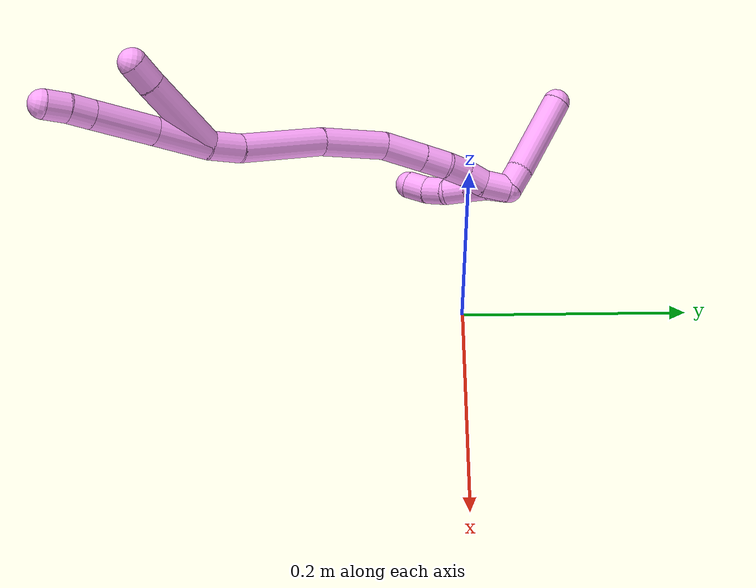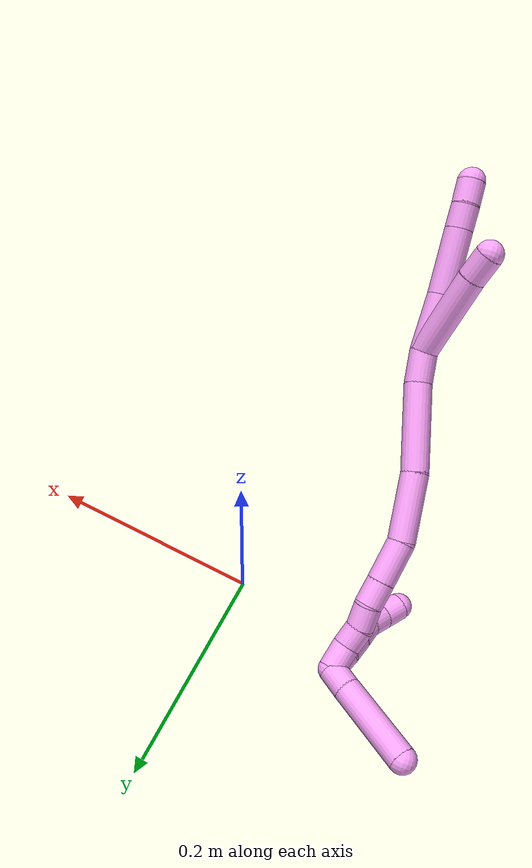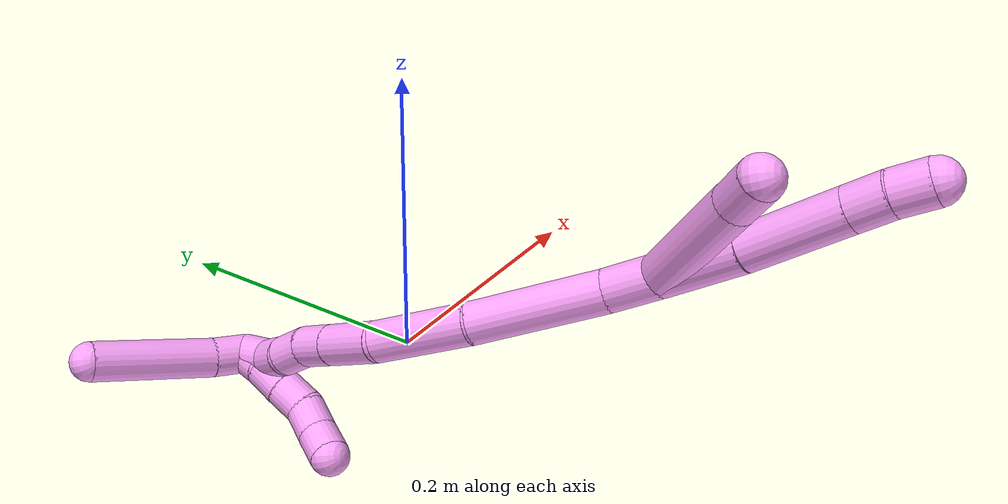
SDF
<sdf version="1.7">
 <world name="default">
  <model name="4">
   <static>0</static>
   <link name="4">
    <collision name="collision-cylinder-e_1_2_8">
     <pose>0.003024 0.001178 0.024854 -0.047366 0.120931 -0.002868</pose>
     <geometry><cylinder><radius>0.0125</radius><length>0.05013</length></cylinder></geometry>
     <surface>
      <friction><ode><mu>1.16</mu><mu2>1.16</mu2><slip1>0</slip1><slip2>0</slip2></ode></friction>
      <contact><ode><kp>1e+06</kp><kd>1</kd><max_vel>0</max_vel><min_depth>0.001</min_depth></ode></contact>
     </surface>
    </collision>
    <visual name="visual-cylinder-e_1_2_8">
     <pose>0.003024 0.001178 0.024854 -0.047366 0.120931 -0.002868</pose>
     <geometry><cylinder><radius>0.0125</radius><length>0.05013</length></cylinder></geometry>
     <material><ambient>1 0.65098 0.996078 1</ambient></material>
    </visual>
    <collision name="collision-cylinder-e_2_8_9">
     <pose>0.011317 0.003818 0.078114 -0.051401 0.183192 -0.004722</pose>
     <geometry><cylinder><radius>0.0125</radius><length>0.057855</length></cylinder></geometry>
     <surface>
      <friction><ode><mu>1.16</mu><mu2>1.16</mu2><slip1>0</slip1><slip2>0</slip2></ode></friction>
      <contact><ode><kp>1e+06</kp><kd>1</kd><max_vel>0</max_vel><min_depth>0.001</min_depth></ode></contact>
     </surface>
    </collision>
    <visual name="visual-cylinder-e_2_8_9">
     <pose>0.011317 0.003818 0.078114 -0.051401 0.183192 -0.004722</pose>
     <geometry><cylinder><radius>0.0125</radius><length>0.057855</length></cylinder></geometry>
     <material><ambient>1 0.65098 0.996078 1</ambient></material>
    </visual>
    <collision name="collision-cylinder-e_3_9_10">
     <pose>0.018418 0.005868 0.116891 -0.05674 0.174512 -0.004965</pose>
     <geometry><cylinder><radius>0.0125</radius><length>0.021098</length></cylinder></geometry>
     <surface>
      <friction><ode><mu>1.16</mu><mu2>1.16</mu2><slip1>0</slip1><slip2>0</slip2></ode></friction>
      <contact><ode><kp>1e+06</kp><kd>1</kd><max_vel>0</max_vel><min_depth>0.001</min_depth></ode></contact>
     </surface>
    </collision>
    <visual name="visual-cylinder-e_3_9_10">
     <pose>0.018418 0.005868 0.116891 -0.05674 0.174512 -0.004965</pose>
     <geometry><cylinder><radius>0.0125</radius><length>0.021098</length></cylinder></geometry>
     <material><ambient>1 0.65098 0.996078 1</ambient></material>
    </visual>
    <collision name="collision-cylinder-e_4_10_6">
     <pose>0.021612 0.005961 0.137621 0.047867 0.130569 0.00313</pose>
     <geometry><cylinder><radius>0.0125</radius><length>0.020918</length></cylinder></geometry>
     <surface>
      <friction><ode><mu>1.16</mu><mu2>1.16</mu2><slip1>0</slip1><slip2>0</slip2></ode></friction>
      <contact><ode><kp>1e+06</kp><kd>1</kd><max_vel>0</max_vel><min_depth>0.001</min_depth></ode></contact>
     </surface>
    </collision>
    <visual name="visual-cylinder-e_4_10_6">
     <pose>0.021612 0.005961 0.137621 0.047867 0.130569 0.00313</pose>
     <geometry><cylinder><radius>0.0125</radius><length>0.020918</length></cylinder></geometry>
     <material><ambient>1 0.65098 0.996078 1</ambient></material>
    </visual>
    <collision name="collision-cylinder-e_1_2_11">
     <pose>0.005726 0.020059 0.031723 -0.563852 0.151391 -0.043926</pose>
     <geometry><cylinder><radius>0.0125</radius><length>0.075935</length></cylinder></geometry>
     <surface>
      <friction><ode><mu>1.16</mu><mu2>1.16</mu2><slip1>0</slip1><slip2>0</slip2></ode></friction>
      <contact><ode><kp>1e+06</kp><kd>1</kd><max_vel>0</max_vel><min_depth>0.001</min_depth></ode></contact>
     </surface>
    </collision>
    <visual name="visual-cylinder-e_1_2_11">
     <pose>0.005726 0.020059 0.031723 -0.563852 0.151391 -0.043926</pose>
     <geometry><cylinder><radius>0.0125</radius><length>0.075935</length></cylinder></geometry>
     <material><ambient>1 0.65098 0.996078 1</ambient></material>
    </visual>
    <collision name="collision-cylinder-e_2_11_5">
     <pose>0.012695 0.046922 0.073293 -0.604615 0.103487 -0.0323</pose>
     <geometry><cylinder><radius>0.0125</radius><length>0.024065</length></cylinder></geometry>
     <surface>
      <friction><ode><mu>1.16</mu><mu2>1.16</mu2><slip1>0</slip1><slip2>0</slip2></ode></friction>
      <contact><ode><kp>1e+06</kp><kd>1</kd><max_vel>0</max_vel><min_depth>0.001</min_depth></ode></contact>
     </surface>
    </collision>
    <visual name="visual-cylinder-e_2_11_5">
     <pose>0.012695 0.046922 0.073293 -0.604615 0.103487 -0.0323</pose>
     <geometry><cylinder><radius>0.0125</radius><length>0.024065</length></cylinder></geometry>
     <material><ambient>1 0.65098 0.996078 1</ambient></material>
    </visual>
    <collision name="collision-cylinder-e_1_2_12">
     <pose>-0.002696 0.001367 -0.014608 -3.04829 -0.181722 2.19456</pose>
     <geometry><cylinder><radius>0.0125</radius><length>0.029835</length></cylinder></geometry>
     <surface>
      <friction><ode><mu>1.16</mu><mu2>1.16</mu2><slip1>0</slip1><slip2>0</slip2></ode></friction>
      <contact><ode><kp>1e+06</kp><kd>1</kd><max_vel>0</max_vel><min_depth>0.001</min_depth></ode></contact>
     </surface>
    </collision>
    <visual name="visual-cylinder-e_1_2_12">
     <pose>-0.002696 0.001367 -0.014608 -3.04829 -0.181722 2.19456</pose>
     <geometry><cylinder><radius>0.0125</radius><length>0.029835</length></cylinder></geometry>
     <material><ambient>1 0.65098 0.996078 1</ambient></material>
    </visual>
    <collision name="collision-cylinder-e_2_12_13">
     <pose>-0.014016 0.012596 -0.0669 -2.88562 -0.217885 1.4089</pose>
     <geometry><cylinder><radius>0.0125</radius><length>0.079793</length></cylinder></geometry>
     <surface>
      <friction><ode><mu>1.16</mu><mu2>1.16</mu2><slip1>0</slip1><slip2>0</slip2></ode></friction>
      <contact><ode><kp>1e+06</kp><kd>1</kd><max_vel>0</max_vel><min_depth>0.001</min_depth></ode></contact>
     </surface>
    </collision>
    <visual name="visual-cylinder-e_2_12_13">
     <pose>-0.014016 0.012596 -0.0669 -2.88562 -0.217885 1.4089</pose>
     <geometry><cylinder><radius>0.0125</radius><length>0.079793</length></cylinder></geometry>
     <material><ambient>1 0.65098 0.996078 1</ambient></material>
    </visual>
    <collision name="collision-cylinder-e_3_13_14">
     <pose>-0.026171 0.026758 -0.135042 -3.00134 -0.114274 1.36685</pose>
     <geometry><cylinder><radius>0.0125</radius><length>0.061925</length></cylinder></geometry>
     <surface>
      <friction><ode><mu>1.16</mu><mu2>1.16</mu2><slip1>0</slip1><slip2>0</slip2></ode></friction>
      <contact><ode><kp>1e+06</kp><kd>1</kd><max_vel>0</max_vel><min_depth>0.001</min_depth></ode></contact>
     </surface>
    </collision>
    <visual name="visual-cylinder-e_3_13_14">
     <pose>-0.026171 0.026758 -0.135042 -3.00134 -0.114274 1.36685</pose>
     <geometry><cylinder><radius>0.0125</radius><length>0.061925</length></cylinder></geometry>
     <material><ambient>1 0.65098 0.996078 1</ambient></material>
    </visual>
    <collision name="collision-cylinder-e_4_14_15">
     <pose>-0.028032 0.029899 -0.184789 3.08154 0.08618 1.92473</pose>
     <geometry><cylinder><radius>0.0125</radius><length>0.038791</length></cylinder></geometry>
     <surface>
      <friction><ode><mu>1.16</mu><mu2>1.16</mu2><slip1>0</slip1><slip2>0</slip2></ode></friction>
      <contact><ode><kp>1e+06</kp><kd>1</kd><max_vel>0</max_vel><min_depth>0.001</min_depth></ode></contact>
     </surface>
    </collision>
    <visual name="visual-cylinder-e_4_14_15">
     <pose>-0.028032 0.029899 -0.184789 3.08154 0.08618 1.92473</pose>
     <geometry><cylinder><radius>0.0125</radius><length>0.038791</length></cylinder></geometry>
     <material><ambient>1 0.65098 0.996078 1</ambient></material>
    </visual>
    <collision name="collision-cylinder-e_5_15_16">
     <pose>-0.025222 0.027986 -0.215779 3.0773 0.096961 1.97091</pose>
     <geometry><cylinder><radius>0.0125</radius><length>0.023562</length></cylinder></geometry>
     <surface>
      <friction><ode><mu>1.16</mu><mu2>1.16</mu2><slip1>0</slip1><slip2>0</slip2></ode></friction>
      <contact><ode><kp>1e+06</kp><kd>1</kd><max_vel>0</max_vel><min_depth>0.001</min_depth></ode></contact>
     </surface>
    </collision>
    <visual name="visual-cylinder-e_5_15_16">
     <pose>-0.025222 0.027986 -0.215779 3.0773 0.096961 1.97091</pose>
     <geometry><cylinder><radius>0.0125</radius><length>0.023562</length></cylinder></geometry>
     <material><ambient>1 0.65098 0.996078 1</ambient></material>
    </visual>
    <collision name="collision-cylinder-e_6_16_17">
     <pose>-0.025443 0.025785 -0.237958 3.00433 -0.128019 -1.50089</pose>
     <geometry><cylinder><radius>0.0125</radius><length>0.021329</length></cylinder></geometry>
     <surface>
      <friction><ode><mu>1.16</mu><mu2>1.16</mu2><slip1>0</slip1><slip2>0</slip2></ode></friction>
      <contact><ode><kp>1e+06</kp><kd>1</kd><max_vel>0</max_vel><min_depth>0.001</min_depth></ode></contact>
     </surface>
    </collision>
    <visual name="visual-cylinder-e_6_16_17">
     <pose>-0.025443 0.025785 -0.237958 3.00433 -0.128019 -1.50089</pose>
     <geometry><cylinder><radius>0.0125</radius><length>0.021329</length></cylinder></geometry>
     <material><ambient>1 0.65098 0.996078 1</ambient></material>
    </visual>
    <collision name="collision-cylinder-e_7_17_18">
     <pose>-0.025732 0.02158 -0.258323 2.86964 0.104062 0.727381</pose>
     <geometry><cylinder><radius>0.0125</radius><length>0.020641</length></cylinder></geometry>
     <surface>
      <friction><ode><mu>1.16</mu><mu2>1.16</mu2><slip1>0</slip1><slip2>0</slip2></ode></friction>
      <contact><ode><kp>1e+06</kp><kd>1</kd><max_vel>0</max_vel><min_depth>0.001</min_depth></ode></contact>
     </surface>
    </collision>
    <visual name="visual-cylinder-e_7_17_18">
     <pose>-0.025732 0.02158 -0.258323 2.86964 0.104062 0.727381</pose>
     <geometry><cylinder><radius>0.0125</radius><length>0.020641</length></cylinder></geometry>
     <material><ambient>1 0.65098 0.996078 1</ambient></material>
    </visual>
    <collision name="collision-cylinder-e_8_18_1">
     <pose>-0.021675 0.019241 -0.27989 -3.10586 0.250116 -2.8592</pose>
     <geometry><cylinder><radius>0.0125</radius><length>0.024126</length></cylinder></geometry>
     <surface>
      <friction><ode><mu>1.16</mu><mu2>1.16</mu2><slip1>0</slip1><slip2>0</slip2></ode></friction>
      <contact><ode><kp>1e+06</kp><kd>1</kd><max_vel>0</max_vel><min_depth>0.001</min_depth></ode></contact>
     </surface>
    </collision>
    <visual name="visual-cylinder-e_8_18_1">
     <pose>-0.021675 0.019241 -0.27989 -3.10586 0.250116 -2.8592</pose>
     <geometry><cylinder><radius>0.0125</radius><length>0.024126</length></cylinder></geometry>
     <material><ambient>1 0.65098 0.996078 1</ambient></material>
    </visual>
    <collision name="collision-cylinder-e_1_1_19">
     <pose>-0.023971 0.018112 -0.283221 0.183151 -0.556493 -0.052453</pose>
     <geometry><cylinder><radius>0.0125</radius><length>0.02</length></cylinder></geometry>
     <surface>
      <friction><ode><mu>1.16</mu><mu2>1.16</mu2><slip1>0</slip1><slip2>0</slip2></ode></friction>
      <contact><ode><kp>1e+06</kp><kd>1</kd><max_vel>0</max_vel><min_depth>0.001</min_depth></ode></contact>
     </surface>
    </collision>
    <visual name="visual-cylinder-e_1_1_19">
     <pose>-0.023971 0.018112 -0.283221 0.183151 -0.556493 -0.052453</pose>
     <geometry><cylinder><radius>0.0125</radius><length>0.02</length></cylinder></geometry>
     <material><ambient>1 0.65098 0.996078 1</ambient></material>
    </visual>
    <collision name="collision-cylinder-e_2_19_20">
     <pose>-0.035373 0.01276 -0.267939 0.50193 -0.658594 -0.174777</pose>
     <geometry><cylinder><radius>0.0125</radius><length>0.02</length></cylinder></geometry>
     <surface>
      <friction><ode><mu>1.16</mu><mu2>1.16</mu2><slip1>0</slip1><slip2>0</slip2></ode></friction>
      <contact><ode><kp>1e+06</kp><kd>1</kd><max_vel>0</max_vel><min_depth>0.001</min_depth></ode></contact>
     </surface>
    </collision>
    <visual name="visual-cylinder-e_2_19_20">
     <pose>-0.035373 0.01276 -0.267939 0.50193 -0.658594 -0.174777</pose>
     <geometry><cylinder><radius>0.0125</radius><length>0.02</length></cylinder></geometry>
     <material><ambient>1 0.65098 0.996078 1</ambient></material>
    </visual>
    <collision name="collision-cylinder-e_3_20_21">
     <pose>-0.047329 0.004976 -0.253927 0.512128 -0.623188 -0.168254</pose>
     <geometry><cylinder><radius>0.0125</radius><length>0.02</length></cylinder></geometry>
     <surface>
      <friction><ode><mu>1.16</mu><mu2>1.16</mu2><slip1>0</slip1><slip2>0</slip2></ode></friction>
      <contact><ode><kp>1e+06</kp><kd>1</kd><max_vel>0</max_vel><min_depth>0.001</min_depth></ode></contact>
     </surface>
    </collision>
    <visual name="visual-cylinder-e_3_20_21">
     <pose>-0.047329 0.004976 -0.253927 0.512128 -0.623188 -0.168254</pose>
     <geometry><cylinder><radius>0.0125</radius><length>0.02</length></cylinder></geometry>
     <material><ambient>1 0.65098 0.996078 1</ambient></material>
    </visual>
    <collision name="collision-cylinder-e_4_21_22">
     <pose>-0.061248 -0.00129 -0.241423 0.398861 -0.941211 -0.204925</pose>
     <geometry><cylinder><radius>0.0125</radius><length>0.02</length></cylinder></geometry>
     <surface>
      <friction><ode><mu>1.16</mu><mu2>1.16</mu2><slip1>0</slip1><slip2>0</slip2></ode></friction>
      <contact><ode><kp>1e+06</kp><kd>1</kd><max_vel>0</max_vel><min_depth>0.001</min_depth></ode></contact>
     </surface>
    </collision>
    <visual name="visual-cylinder-e_4_21_22">
     <pose>-0.061248 -0.00129 -0.241423 0.398861 -0.941211 -0.204925</pose>
     <geometry><cylinder><radius>0.0125</radius><length>0.02</length></cylinder></geometry>
     <material><ambient>1 0.65098 0.996078 1</ambient></material>
    </visual>
    <collision name="collision-cylinder-e_5_22_4">
     <pose>-0.07679 -0.003871 -0.229343 0.044246 -0.841825 -0.01981</pose>
     <geometry><cylinder><radius>0.0125</radius><length>0.02</length></cylinder></geometry>
     <surface>
      <friction><ode><mu>1.16</mu><mu2>1.16</mu2><slip1>0</slip1><slip2>0</slip2></ode></friction>
      <contact><ode><kp>1e+06</kp><kd>1</kd><max_vel>0</max_vel><min_depth>0.001</min_depth></ode></contact>
     </surface>
    </collision>
    <visual name="visual-cylinder-e_5_22_4">
     <pose>-0.07679 -0.003871 -0.229343 0.044246 -0.841825 -0.01981</pose>
     <geometry><cylinder><radius>0.0125</radius><length>0.02</length></cylinder></geometry>
     <material><ambient>1 0.65098 0.996078 1</ambient></material>
    </visual>
    <collision name="collision-cylinder-e_1_1_23">
     <pose>-0.022994 0.028771 -0.296431 -2.06082 -0.394913 0.643735</pose>
     <geometry><cylinder><radius>0.0125</radius><length>0.022378</length></cylinder></geometry>
     <surface>
      <friction><ode><mu>1.16</mu><mu2>1.16</mu2><slip1>0</slip1><slip2>0</slip2></ode></friction>
      <contact><ode><kp>1e+06</kp><kd>1</kd><max_vel>0</max_vel><min_depth>0.001</min_depth></ode></contact>
     </surface>
    </collision>
    <visual name="visual-cylinder-e_1_1_23">
     <pose>-0.022994 0.028771 -0.296431 -2.06082 -0.394913 0.643735</pose>
     <geometry><cylinder><radius>0.0125</radius><length>0.022378</length></cylinder></geometry>
     <material><ambient>1 0.65098 0.996078 1</ambient></material>
    </visual>
    <collision name="collision-cylinder-e_2_23_3">
     <pose>-0.039428 0.071684 -0.31601 -1.98148 -0.317853 0.479792</pose>
     <geometry><cylinder><radius>0.0125</radius><length>0.077622</length></cylinder></geometry>
     <surface>
      <friction><ode><mu>1.16</mu><mu2>1.16</mu2><slip1>0</slip1><slip2>0</slip2></ode></friction>
      <contact><ode><kp>1e+06</kp><kd>1</kd><max_vel>0</max_vel><min_depth>0.001</min_depth></ode></contact>
     </surface>
    </collision>
    <visual name="visual-cylinder-e_2_23_3">
     <pose>-0.039428 0.071684 -0.31601 -1.98148 -0.317853 0.479792</pose>
     <geometry><cylinder><radius>0.0125</radius><length>0.077622</length></cylinder></geometry>
     <material><ambient>1 0.65098 0.996078 1</ambient></material>
    </visual>
    <collision name="collision-sphere-3">
     <pose>-0.051557 0.105486 -0.330729 0 -0 0</pose>
     <geometry><sphere><radius>0.0125</radius></sphere></geometry>
     <surface>
      <friction><ode><mu>1.16</mu><mu2>1.16</mu2><slip1>0</slip1><slip2>0</slip2></ode></friction>
      <contact><ode><kp>1e+06</kp><kd>1</kd><max_vel>0</max_vel><min_depth>0.001</min_depth></ode></contact>
     </surface>
    </collision>
    <visual name="visual-sphere-3">
     <pose>-0.051557 0.105486 -0.330729 0 -0 0</pose>
     <geometry><sphere><radius>0.0125</radius></sphere></geometry>
     <material><ambient>1 0.65098 0.996078 1</ambient></material>
    </visual>
    <collision name="collision-sphere-23">
     <pose>-0.027298 0.037883 -0.301292 0 -0 0</pose>
     <geometry><sphere><radius>0.0125</radius></sphere></geometry>
     <surface>
      <friction><ode><mu>1.16</mu><mu2>1.16</mu2><slip1>0</slip1><slip2>0</slip2></ode></friction>
      <contact><ode><kp>1e+06</kp><kd>1</kd><max_vel>0</max_vel><min_depth>0.001</min_depth></ode></contact>
     </surface>
    </collision>
    <visual name="visual-sphere-23">
     <pose>-0.027298 0.037883 -0.301292 0 -0 0</pose>
     <geometry><sphere><radius>0.0125</radius></sphere></geometry>
     <material><ambient>1 0.65098 0.996078 1</ambient></material>
    </visual>
    <collision name="collision-sphere-4">
     <pose>-0.084248 -0.004166 -0.222688 0 -0 0</pose>
     <geometry><sphere><radius>0.0125</radius></sphere></geometry>
     <surface>
      <friction><ode><mu>1.16</mu><mu2>1.16</mu2><slip1>0</slip1><slip2>0</slip2></ode></friction>
      <contact><ode><kp>1e+06</kp><kd>1</kd><max_vel>0</max_vel><min_depth>0.001</min_depth></ode></contact>
     </surface>
    </collision>
    <visual name="visual-sphere-4">
     <pose>-0.084248 -0.004166 -0.222688 0 -0 0</pose>
     <geometry><sphere><radius>0.0125</radius></sphere></geometry>
     <material><ambient>1 0.65098 0.996078 1</ambient></material>
    </visual>
    <collision name="collision-sphere-22">
     <pose>-0.069331 -0.003576 -0.235997 0 -0 0</pose>
     <geometry><sphere><radius>0.0125</radius></sphere></geometry>
     <surface>
      <friction><ode><mu>1.16</mu><mu2>1.16</mu2><slip1>0</slip1><slip2>0</slip2></ode></friction>
      <contact><ode><kp>1e+06</kp><kd>1</kd><max_vel>0</max_vel><min_depth>0.001</min_depth></ode></contact>
     </surface>
    </collision>
    <visual name="visual-sphere-22">
     <pose>-0.069331 -0.003576 -0.235997 0 -0 0</pose>
     <geometry><sphere><radius>0.0125</radius></sphere></geometry>
     <material><ambient>1 0.65098 0.996078 1</ambient></material>
    </visual>
    <collision name="collision-sphere-21">
     <pose>-0.053166 0.000997 -0.246849 0 -0 0</pose>
     <geometry><sphere><radius>0.0125</radius></sphere></geometry>
     <surface>
      <friction><ode><mu>1.16</mu><mu2>1.16</mu2><slip1>0</slip1><slip2>0</slip2></ode></friction>
      <contact><ode><kp>1e+06</kp><kd>1</kd><max_vel>0</max_vel><min_depth>0.001</min_depth></ode></contact>
     </surface>
    </collision>
    <visual name="visual-sphere-21">
     <pose>-0.053166 0.000997 -0.246849 0 -0 0</pose>
     <geometry><sphere><radius>0.0125</radius></sphere></geometry>
     <material><ambient>1 0.65098 0.996078 1</ambient></material>
    </visual>
    <collision name="collision-sphere-20">
     <pose>-0.041493 0.008955 -0.261006 0 -0 0</pose>
     <geometry><sphere><radius>0.0125</radius></sphere></geometry>
     <surface>
      <friction><ode><mu>1.16</mu><mu2>1.16</mu2><slip1>0</slip1><slip2>0</slip2></ode></friction>
      <contact><ode><kp>1e+06</kp><kd>1</kd><max_vel>0</max_vel><min_depth>0.001</min_depth></ode></contact>
     </surface>
    </collision>
    <visual name="visual-sphere-20">
     <pose>-0.041493 0.008955 -0.261006 0 -0 0</pose>
     <geometry><sphere><radius>0.0125</radius></sphere></geometry>
     <material><ambient>1 0.65098 0.996078 1</ambient></material>
    </visual>
    <collision name="collision-sphere-11">
     <pose>0.011452 0.040119 0.063446 0 -0 0</pose>
     <geometry><sphere><radius>0.0125</radius></sphere></geometry>
     <surface>
      <friction><ode><mu>1.16</mu><mu2>1.16</mu2><slip1>0</slip1><slip2>0</slip2></ode></friction>
      <contact><ode><kp>1e+06</kp><kd>1</kd><max_vel>0</max_vel><min_depth>0.001</min_depth></ode></contact>
     </surface>
    </collision>
    <visual name="visual-sphere-11">
     <pose>0.011452 0.040119 0.063446 0 -0 0</pose>
     <geometry><sphere><radius>0.0125</radius></sphere></geometry>
     <material><ambient>1 0.65098 0.996078 1</ambient></material>
    </visual>
    <collision name="collision-sphere-6">
     <pose>0.022973 0.005465 0.147979 0 -0 0</pose>
     <geometry><sphere><radius>0.0125</radius></sphere></geometry>
     <surface>
      <friction><ode><mu>1.16</mu><mu2>1.16</mu2><slip1>0</slip1><slip2>0</slip2></ode></friction>
      <contact><ode><kp>1e+06</kp><kd>1</kd><max_vel>0</max_vel><min_depth>0.001</min_depth></ode></contact>
     </surface>
    </collision>
    <visual name="visual-sphere-6">
     <pose>0.022973 0.005465 0.147979 0 -0 0</pose>
     <geometry><sphere><radius>0.0125</radius></sphere></geometry>
     <material><ambient>1 0.65098 0.996078 1</ambient></material>
    </visual>
    <collision name="collision-sphere-10">
     <pose>0.02025 0.006457 0.127263 0 -0 0</pose>
     <geometry><sphere><radius>0.0125</radius></sphere></geometry>
     <surface>
      <friction><ode><mu>1.16</mu><mu2>1.16</mu2><slip1>0</slip1><slip2>0</slip2></ode></friction>
      <contact><ode><kp>1e+06</kp><kd>1</kd><max_vel>0</max_vel><min_depth>0.001</min_depth></ode></contact>
     </surface>
    </collision>
    <visual name="visual-sphere-10">
     <pose>0.02025 0.006457 0.127263 0 -0 0</pose>
     <geometry><sphere><radius>0.0125</radius></sphere></geometry>
     <material><ambient>1 0.65098 0.996078 1</ambient></material>
    </visual>
    <collision name="collision-sphere-9">
     <pose>0.016587 0.005279 0.10652 0 -0 0</pose>
     <geometry><sphere><radius>0.0125</radius></sphere></geometry>
     <surface>
      <friction><ode><mu>1.16</mu><mu2>1.16</mu2><slip1>0</slip1><slip2>0</slip2></ode></friction>
      <contact><ode><kp>1e+06</kp><kd>1</kd><max_vel>0</max_vel><min_depth>0.001</min_depth></ode></contact>
     </surface>
    </collision>
    <visual name="visual-sphere-9">
     <pose>0.016587 0.005279 0.10652 0 -0 0</pose>
     <geometry><sphere><radius>0.0125</radius></sphere></geometry>
     <material><ambient>1 0.65098 0.996078 1</ambient></material>
    </visual>
    <collision name="collision-sphere-2">
     <geometry><sphere><radius>0.0125</radius></sphere></geometry>
     <surface>
      <friction><ode><mu>1.16</mu><mu2>1.16</mu2><slip1>0</slip1><slip2>0</slip2></ode></friction>
      <contact><ode><kp>1e+06</kp><kd>1</kd><max_vel>0</max_vel><min_depth>0.001</min_depth></ode></contact>
     </surface>
    </collision>
    <visual name="visual-sphere-2">
     <geometry><sphere><radius>0.0125</radius></sphere></geometry>
     <material><ambient>1 0.65098 0.996078 1</ambient></material>
    </visual>
    <collision name="collision-sphere-19">
     <pose>-0.029253 0.016565 -0.274872 0 -0 0</pose>
     <geometry><sphere><radius>0.0125</radius></sphere></geometry>
     <surface>
      <friction><ode><mu>1.16</mu><mu2>1.16</mu2><slip1>0</slip1><slip2>0</slip2></ode></friction>
      <contact><ode><kp>1e+06</kp><kd>1</kd><max_vel>0</max_vel><min_depth>0.001</min_depth></ode></contact>
     </surface>
    </collision>
    <visual name="visual-sphere-19">
     <pose>-0.029253 0.016565 -0.274872 0 -0 0</pose>
     <geometry><sphere><radius>0.0125</radius></sphere></geometry>
     <material><ambient>1 0.65098 0.996078 1</ambient></material>
    </visual>
    <collision name="collision-sphere-8">
     <pose>0.006047 0.002356 0.049708 0 -0 0</pose>
     <geometry><sphere><radius>0.0125</radius></sphere></geometry>
     <surface>
      <friction><ode><mu>1.16</mu><mu2>1.16</mu2><slip1>0</slip1><slip2>0</slip2></ode></friction>
      <contact><ode><kp>1e+06</kp><kd>1</kd><max_vel>0</max_vel><min_depth>0.001</min_depth></ode></contact>
     </surface>
    </collision>
    <visual name="visual-sphere-8">
     <pose>0.006047 0.002356 0.049708 0 -0 0</pose>
     <geometry><sphere><radius>0.0125</radius></sphere></geometry>
     <material><ambient>1 0.65098 0.996078 1</ambient></material>
    </visual>
    <collision name="collision-sphere-5">
     <pose>0.013938 0.053725 0.083139 0 -0 0</pose>
     <geometry><sphere><radius>0.0125</radius></sphere></geometry>
     <surface>
      <friction><ode><mu>1.16</mu><mu2>1.16</mu2><slip1>0</slip1><slip2>0</slip2></ode></friction>
      <contact><ode><kp>1e+06</kp><kd>1</kd><max_vel>0</max_vel><min_depth>0.001</min_depth></ode></contact>
     </surface>
    </collision>
    <visual name="visual-sphere-5">
     <pose>0.013938 0.053725 0.083139 0 -0 0</pose>
     <geometry><sphere><radius>0.0125</radius></sphere></geometry>
     <material><ambient>1 0.65098 0.996078 1</ambient></material>
    </visual>
    <collision name="collision-sphere-12">
     <pose>-0.005392 0.002734 -0.029216 0 -0 0</pose>
     <geometry><sphere><radius>0.0125</radius></sphere></geometry>
     <surface>
      <friction><ode><mu>1.16</mu><mu2>1.16</mu2><slip1>0</slip1><slip2>0</slip2></ode></friction>
      <contact><ode><kp>1e+06</kp><kd>1</kd><max_vel>0</max_vel><min_depth>0.001</min_depth></ode></contact>
     </surface>
    </collision>
    <visual name="visual-sphere-12">
     <pose>-0.005392 0.002734 -0.029216 0 -0 0</pose>
     <geometry><sphere><radius>0.0125</radius></sphere></geometry>
     <material><ambient>1 0.65098 0.996078 1</ambient></material>
    </visual>
    <collision name="collision-sphere-13">
     <pose>-0.02264 0.022458 -0.104584 0 -0 0</pose>
     <geometry><sphere><radius>0.0125</radius></sphere></geometry>
     <surface>
      <friction><ode><mu>1.16</mu><mu2>1.16</mu2><slip1>0</slip1><slip2>0</slip2></ode></friction>
      <contact><ode><kp>1e+06</kp><kd>1</kd><max_vel>0</max_vel><min_depth>0.001</min_depth></ode></contact>
     </surface>
    </collision>
    <visual name="visual-sphere-13">
     <pose>-0.02264 0.022458 -0.104584 0 -0 0</pose>
     <geometry><sphere><radius>0.0125</radius></sphere></geometry>
     <material><ambient>1 0.65098 0.996078 1</ambient></material>
    </visual>
    <collision name="collision-sphere-14">
     <pose>-0.029701 0.031058 -0.1655 0 -0 0</pose>
     <geometry><sphere><radius>0.0125</radius></sphere></geometry>
     <surface>
      <friction><ode><mu>1.16</mu><mu2>1.16</mu2><slip1>0</slip1><slip2>0</slip2></ode></friction>
      <contact><ode><kp>1e+06</kp><kd>1</kd><max_vel>0</max_vel><min_depth>0.001</min_depth></ode></contact>
     </surface>
    </collision>
    <visual name="visual-sphere-14">
     <pose>-0.029701 0.031058 -0.1655 0 -0 0</pose>
     <geometry><sphere><radius>0.0125</radius></sphere></geometry>
     <material><ambient>1 0.65098 0.996078 1</ambient></material>
    </visual>
    <collision name="collision-sphere-15">
     <pose>-0.026362 0.028739 -0.204077 0 -0 0</pose>
     <geometry><sphere><radius>0.0125</radius></sphere></geometry>
     <surface>
      <friction><ode><mu>1.16</mu><mu2>1.16</mu2><slip1>0</slip1><slip2>0</slip2></ode></friction>
      <contact><ode><kp>1e+06</kp><kd>1</kd><max_vel>0</max_vel><min_depth>0.001</min_depth></ode></contact>
     </surface>
    </collision>
    <visual name="visual-sphere-15">
     <pose>-0.026362 0.028739 -0.204077 0 -0 0</pose>
     <geometry><sphere><radius>0.0125</radius></sphere></geometry>
     <material><ambient>1 0.65098 0.996078 1</ambient></material>
    </visual>
    <collision name="collision-sphere-16">
     <pose>-0.024081 0.027232 -0.22748 0 -0 0</pose>
     <geometry><sphere><radius>0.0125</radius></sphere></geometry>
     <surface>
      <friction><ode><mu>1.16</mu><mu2>1.16</mu2><slip1>0</slip1><slip2>0</slip2></ode></friction>
      <contact><ode><kp>1e+06</kp><kd>1</kd><max_vel>0</max_vel><min_depth>0.001</min_depth></ode></contact>
     </surface>
    </collision>
    <visual name="visual-sphere-16">
     <pose>-0.024081 0.027232 -0.22748 0 -0 0</pose>
     <geometry><sphere><radius>0.0125</radius></sphere></geometry>
     <material><ambient>1 0.65098 0.996078 1</ambient></material>
    </visual>
    <collision name="collision-sphere-17">
     <pose>-0.026804 0.024338 -0.248435 0 -0 0</pose>
     <geometry><sphere><radius>0.0125</radius></sphere></geometry>
     <surface>
      <friction><ode><mu>1.16</mu><mu2>1.16</mu2><slip1>0</slip1><slip2>0</slip2></ode></friction>
      <contact><ode><kp>1e+06</kp><kd>1</kd><max_vel>0</max_vel><min_depth>0.001</min_depth></ode></contact>
     </surface>
    </collision>
    <visual name="visual-sphere-17">
     <pose>-0.026804 0.024338 -0.248435 0 -0 0</pose>
     <geometry><sphere><radius>0.0125</radius></sphere></geometry>
     <material><ambient>1 0.65098 0.996078 1</ambient></material>
    </visual>
    <collision name="collision-sphere-18">
     <pose>-0.02466 0.018823 -0.26821 0 -0 0</pose>
     <geometry><sphere><radius>0.0125</radius></sphere></geometry>
     <surface>
      <friction><ode><mu>1.16</mu><mu2>1.16</mu2><slip1>0</slip1><slip2>0</slip2></ode></friction>
      <contact><ode><kp>1e+06</kp><kd>1</kd><max_vel>0</max_vel><min_depth>0.001</min_depth></ode></contact>
     </surface>
    </collision>
    <visual name="visual-sphere-18">
     <pose>-0.02466 0.018823 -0.26821 0 -0 0</pose>
     <geometry><sphere><radius>0.0125</radius></sphere></geometry>
     <material><ambient>1 0.65098 0.996078 1</ambient></material>
    </visual>
    <collision name="collision-sphere-1">
     <pose>-0.018689 0.019658 -0.29157 0 -0 0</pose>
     <geometry><sphere><radius>0.0125</radius></sphere></geometry>
     <surface>
      <friction><ode><mu>1.16</mu><mu2>1.16</mu2><slip1>0</slip1><slip2>0</slip2></ode></friction>
      <contact><ode><kp>1e+06</kp><kd>1</kd><max_vel>0</max_vel><min_depth>0.001</min_depth></ode></contact>
     </surface>
    </collision>
    <visual name="visual-sphere-1">
     <pose>-0.018689 0.019658 -0.29157 0 -0 0</pose>
     <geometry><sphere><radius>0.0125</radius></sphere></geometry>
     <material><ambient>1 0.65098 0.996078 1</ambient></material>
    </visual>
    <inertial>
     <pose>-0.01624 0.021312 -0.113261 0 -0 0</pose>
     <mass>0.75</mass>
     <inertia>
      <ixx>0.000208</ixx>
      <ixy>0</ixy>
      <ixz>0</ixz>
      <iyy>0.000166</iyy>
      <iyz>0</iyz>
      <izz>-5.7e-05</izz>
     </inertia>
    </inertial>
   </link>
   <pose>-0.066535 -0.216664 0.159093 1.01381 -0.63225 0.430289</pose>
  </model>
 </world>
</sdf>
